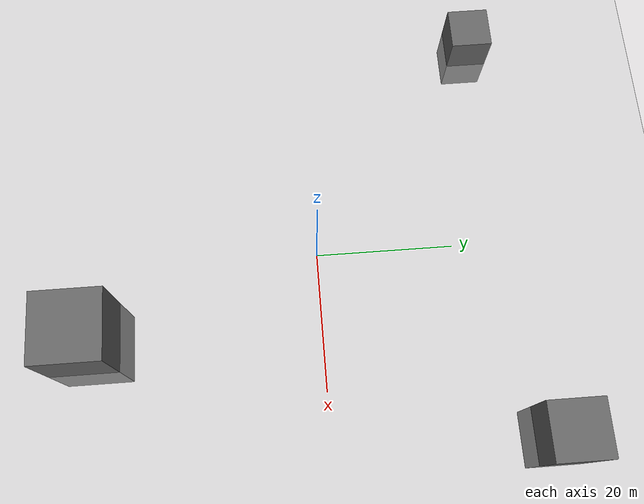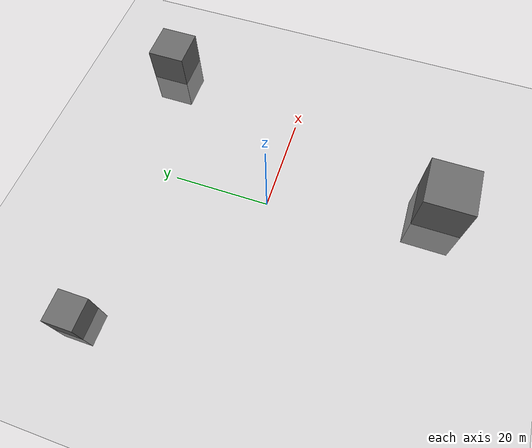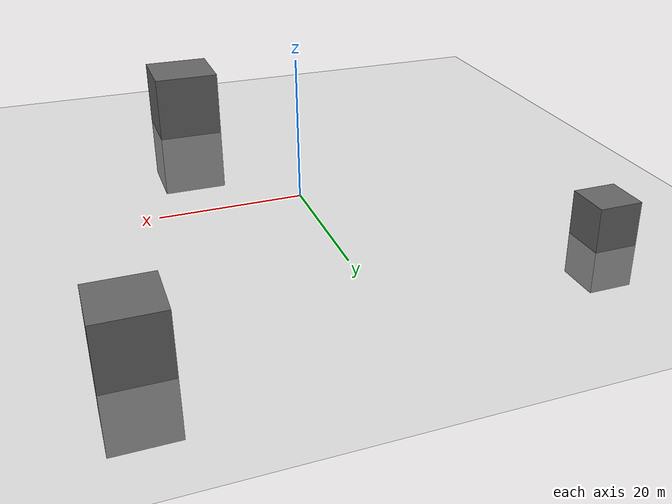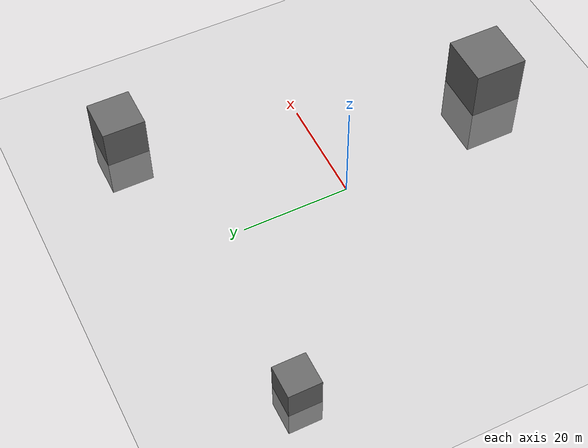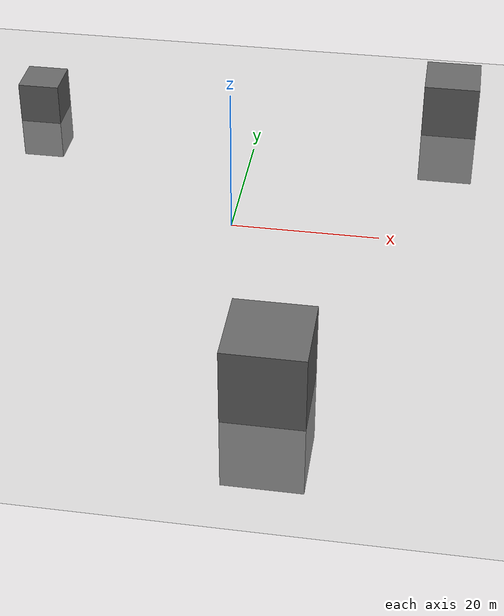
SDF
<?xml version="1.0" ?>
<sdf version="1.8">
  <world name="air_defense">

    <!-- 필수 시스템 플러그인 -->
    <plugin filename="gz-sim-physics-system"
            name="gz::sim::systems::Physics"/>
    <plugin filename="gz-sim-user-commands-system"
            name="gz::sim::systems::UserCommands"/>
    <plugin filename="gz-sim-scene-broadcaster-system"
            name="gz::sim::systems::SceneBroadcaster"/>
    <plugin filename="gz-sim-sensors-system"
            name="gz::sim::systems::Sensors">
      <render_engine>ogre2</render_engine>
    </plugin>

    <!-- 태양광 -->
    <light type="directional" name="sun">
      <cast_shadows>true</cast_shadows>
      <pose>0 0 10 0 0 0</pose>
      <diffuse>0.8 0.8 0.8 1</diffuse>
      <specular>0.2 0.2 0.2 1</specular>
      <direction>-0.5 0.1 -0.9</direction>
    </light>

    <!-- 지면 -->
    <model name="ground_plane">
      <static>true</static>
      <link name="link">
        <collision name="collision">
          <geometry><plane><normal>0 0 1</normal><size>1000 1000</size></plane></geometry>
        </collision>
        <visual name="visual">
          <geometry><plane><normal>0 0 1</normal><size>1000 1000</size></plane></geometry>
          <material>
            <ambient>0.8 0.8 0.8 1</ambient>
            <diffuse>0.8 0.8 0.8 1</diffuse>
          </material>
        </visual>
      </link>
    </model>

    <!-- ── 정적 배경 구조물 (배경 학습용) ──────────────────────────── -->
    <model name="building_ne">
      <static>true</static>
      <pose>28 32 0 0 0 0</pose>
      <link name="link">
        <collision name="col"><geometry><box><size>8 8 16</size></box></geometry></collision>
        <visual name="vis">
          <geometry><box><size>8 8 16</size></box></geometry>
          <material><ambient>0.4 0.4 0.4 1</ambient><diffuse>0.4 0.4 0.4 1</diffuse></material>
        </visual>
      </link>
    </model>

    <model name="building_nw">
      <static>true</static>
      <pose>-33 26 0 0 0 0</pose>
      <link name="link">
        <collision name="col"><geometry><box><size>6 6 12</size></box></geometry></collision>
        <visual name="vis">
          <geometry><box><size>6 6 12</size></box></geometry>
          <material><ambient>0.4 0.4 0.4 1</ambient><diffuse>0.4 0.4 0.4 1</diffuse></material>
        </visual>
      </link>
    </model>

    <model name="building_s">
      <static>true</static>
      <pose>10 -34 0 0 0 0</pose>
      <link name="link">
        <collision name="col"><geometry><box><size>10 10 20</size></box></geometry></collision>
        <visual name="vis">
          <geometry><box><size>10 10 20</size></box></geometry>
          <material><ambient>0.4 0.4 0.4 1</ambient><diffuse>0.4 0.4 0.4 1</diffuse></material>
        </visual>
      </link>
    </model>

    <!-- ── 3D LiDAR 센서 (대공 특화) ───────────────────────────────── -->
    <!--
      앙각: 5° ~ 75° (상공 집중)
      수평: 360° / 1° 스텝
      채널: 16 (수직)
      레이 총 수: 16 × 360 = 5,760
    -->
    <model name="lidar_pole">
      <static>true</static>
      <pose>0 0 0 0 0 0</pose>

      <link name="pole_link">
        <visual name="vis">
          <pose>0 0 1 0 0 0</pose>
          <geometry><cylinder><radius>0.05</radius><length>2</length></cylinder></geometry>
        </visual>
      </link>

      <link name="lidar_link">
        <pose>0 0 2 0 0 0</pose>
        <sensor name="lidar_sensor" type="lidar">
          <always_on>true</always_on>
          <update_rate>10</update_rate>
          <visualize>false</visualize>
          <topic>/lidar/points</topic>
          <lidar>
            <scan>
              <horizontal>
                <samples>360</samples>
                <resolution>1</resolution>
                <min_angle>0</min_angle>
                <max_angle>6.28318</max_angle>
              </horizontal>
              <vertical>
                <samples>16</samples>
                <resolution>1</resolution>
                <min_angle>0.08727</min_angle>
                <max_angle>1.30900</max_angle>
              </vertical>
            </scan>
            <range>
              <min>1.0</min>
              <max>150.0</max>
              <resolution>0.05</resolution>
            </range>
            <noise>
              <type>gaussian</type>
              <mean>0.0</mean>
              <stddev>0.05</stddev>
            </noise>
          </lidar>
        </sensor>
      </link>

      <joint name="pole_lidar_joint" type="fixed">
        <parent>pole_link</parent>
        <child>lidar_link</child>
      </joint>
    </model>

  </world>
</sdf>
